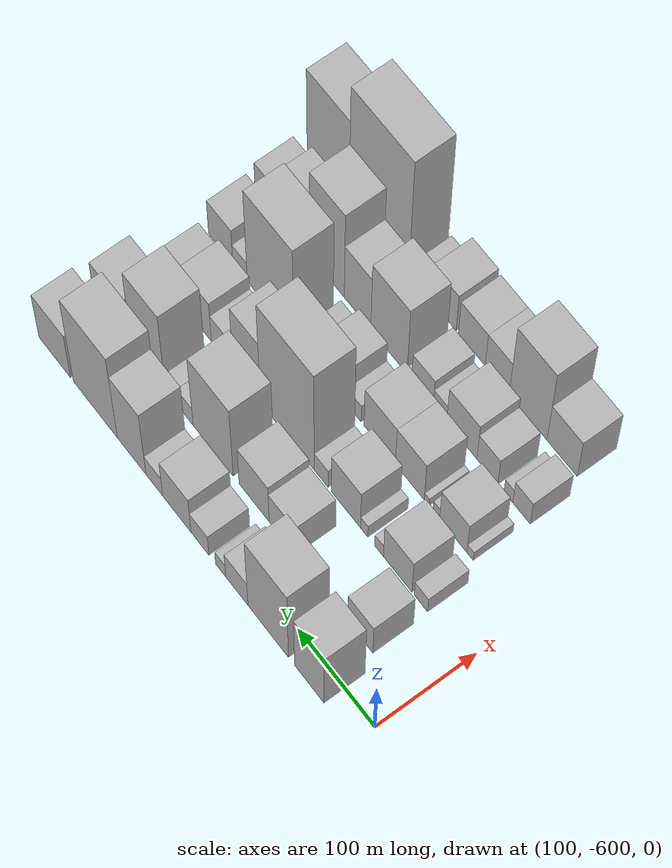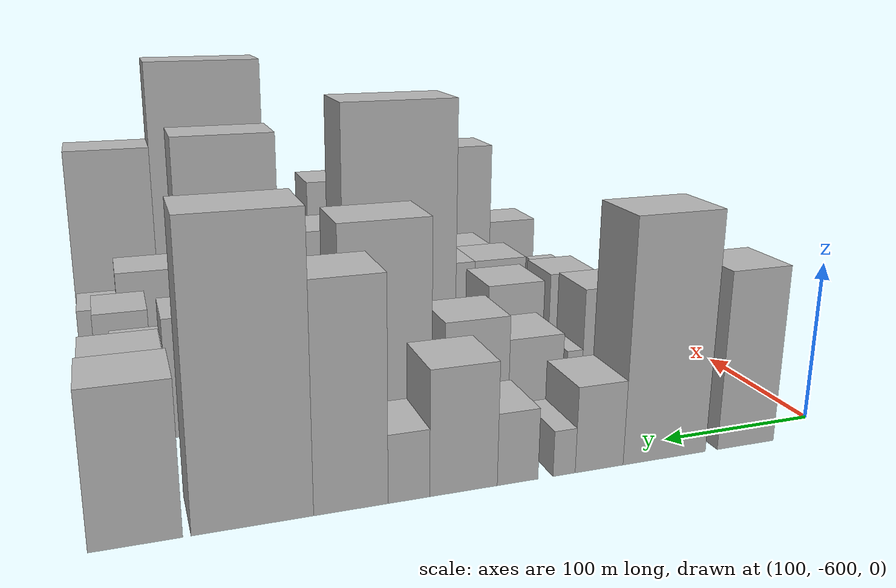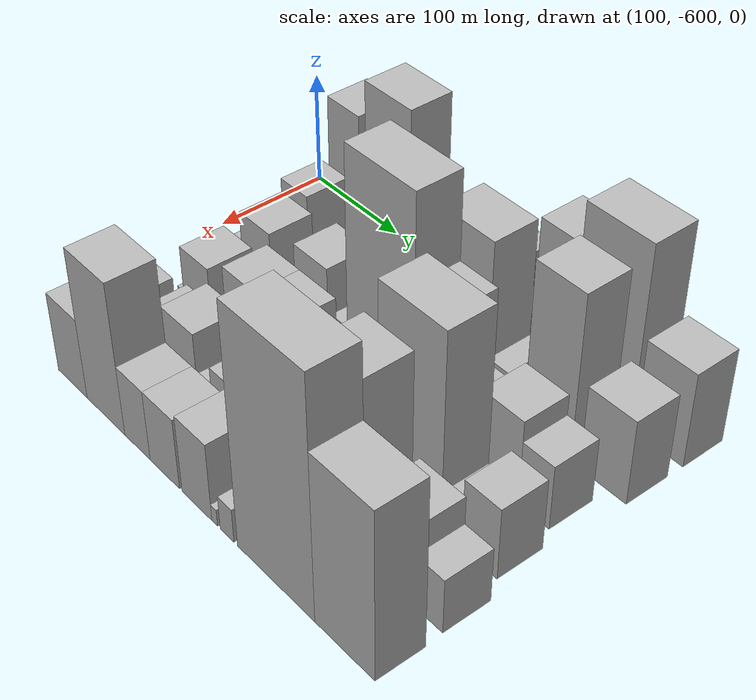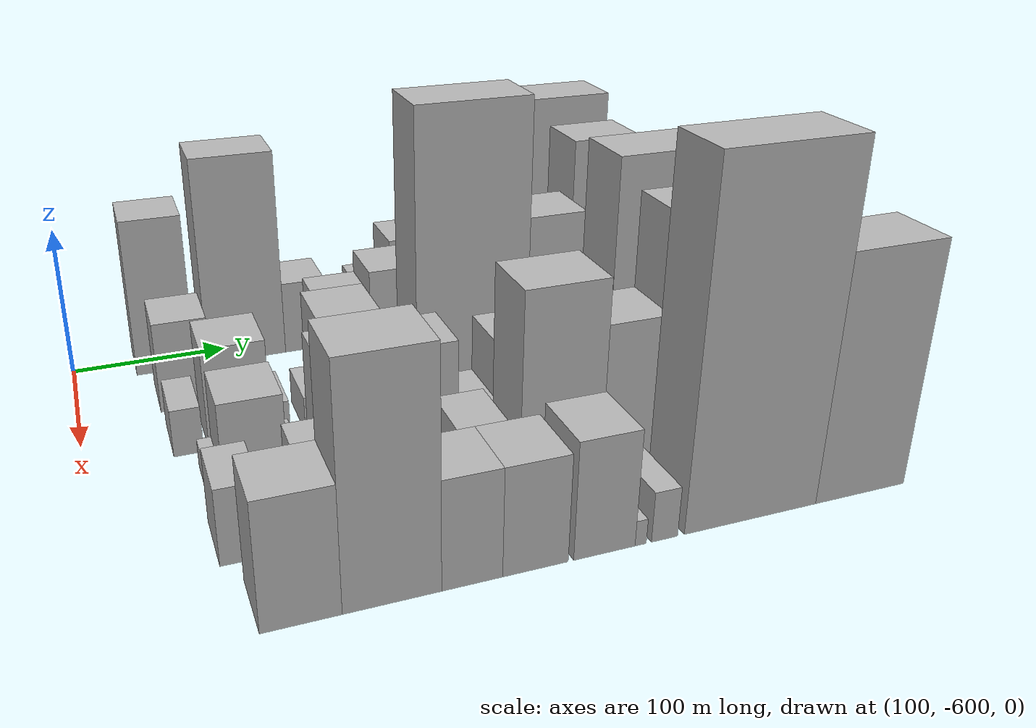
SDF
<sdf version="1.6">
 <world name="default">
  <model name="building_12">
   <static>1</static>
   <pose>100.0000 -541.5066 0 0.000000 0.000000 0.000000</pose>
   <link name="link">
    <pose>0 0 54.00 0 0 0</pose>
    <collision name="collision"><geometry><box><size>40.0000 38.3972 108.0000</size></box></geometry></collision>
    <visual name="visual">
     <cast_shadows>0</cast_shadows>
     <geometry><box><size>40.0000 38.3972 108.0000</size></box></geometry>
     <material>
      <script>
       <uri>model://HANNAS_wall/materials/scripts</uri>
       <uri>model://HANNAS_wall/materials/textures</uri>
       <name>vrc/HANNAS_wall</name>
      </script>
     </material>
    </visual>
   </link>
  </model>
  <model name="building_13">
   <static>1</static>
   <pose>100.0000 -487.5618 0 0.000000 0.000000 0.000000</pose>
   <link name="link">
    <pose>0 0 72.00 0 0 0</pose>
    <collision name="collision"><geometry><box><size>40.0000 53.4926 144.0000</size></box></geometry></collision>
    <visual name="visual">
     <cast_shadows>0</cast_shadows>
     <geometry><box><size>40.0000 53.4926 144.0000</size></box></geometry>
     <material>
      <script>
       <uri>model://HANNAS_wall/materials/scripts</uri>
       <uri>model://HANNAS_wall/materials/textures</uri>
       <name>vrc/HANNAS_wall</name>
      </script>
     </material>
    </visual>
   </link>
  </model>
  <model name="building_14">
   <static>1</static>
   <pose>100.0000 -445.9098 0 0.000000 0.000000 0.000000</pose>
   <link name="link">
    <pose>0 0 25.50 0 0 0</pose>
    <collision name="collision"><geometry><box><size>40.0000 29.8113 51.0000</size></box></geometry></collision>
    <visual name="visual">
     <cast_shadows>0</cast_shadows>
     <geometry><box><size>40.0000 29.8113 51.0000</size></box></geometry>
     <material>
      <script>
       <uri>model://HANNAS_wall/materials/scripts</uri>
       <uri>model://HANNAS_wall/materials/textures</uri>
       <name>vrc/HANNAS_wall</name>
      </script>
     </material>
    </visual>
   </link>
  </model>
  <model name="building_15">
   <static>1</static>
   <pose>100.0000 -424.2704 0 0.000000 0.000000 0.000000</pose>
   <link name="link">
    <pose>0 0 13.50 0 0 0</pose>
    <collision name="collision"><geometry><box><size>40.0000 13.4676 27.0000</size></box></geometry></collision>
    <visual name="visual">
     <cast_shadows>0</cast_shadows>
     <geometry><box><size>40.0000 13.4676 27.0000</size></box></geometry>
     <material>
      <script>
       <uri>model://HANNAS_wall/materials/scripts</uri>
       <uri>model://HANNAS_wall/materials/textures</uri>
       <name>vrc/HANNAS_wall</name>
      </script>
     </material>
    </visual>
   </link>
  </model>
  <model name="building_16">
   <static>1</static>
   <pose>100.0000 -396.5163 0 0.000000 0.000000 0.000000</pose>
   <link name="link">
    <pose>0 0 21.00 0 0 0</pose>
    <collision name="collision"><geometry><box><size>40.0000 24.0407 42.0000</size></box></geometry></collision>
    <visual name="visual">
     <cast_shadows>0</cast_shadows>
     <geometry><box><size>40.0000 24.0407 42.0000</size></box></geometry>
     <material>
      <script>
       <uri>model://HANNAS_wall/materials/scripts</uri>
       <uri>model://HANNAS_wall/materials/textures</uri>
       <name>vrc/HANNAS_wall</name>
      </script>
     </material>
    </visual>
   </link>
  </model>
  <model name="building_17">
   <static>1</static>
   <pose>100.0000 -365.2377 0 0.000000 0.000000 0.000000</pose>
   <link name="link">
    <pose>0 0 36.00 0 0 0</pose>
    <collision name="collision"><geometry><box><size>40.0000 38.5166 72.0000</size></box></geometry></collision>
    <visual name="visual">
     <cast_shadows>0</cast_shadows>
     <geometry><box><size>40.0000 38.5166 72.0000</size></box></geometry>
     <material>
      <script>
       <uri>model://HANNAS_wall/materials/scripts</uri>
       <uri>model://HANNAS_wall/materials/textures</uri>
       <name>vrc/HANNAS_wall</name>
      </script>
     </material>
    </visual>
   </link>
  </model>
  <model name="building_18">
   <static>1</static>
   <pose>100.0000 -334.5423 0 0.000000 0.000000 0.000000</pose>
   <link name="link">
    <pose>0 0 19.50 0 0 0</pose>
    <collision name="collision"><geometry><box><size>40.0000 22.8741 39.0000</size></box></geometry></collision>
    <visual name="visual">
     <cast_shadows>0</cast_shadows>
     <geometry><box><size>40.0000 22.8741 39.0000</size></box></geometry>
     <material>
      <script>
       <uri>model://HANNAS_wall/materials/scripts</uri>
       <uri>model://HANNAS_wall/materials/textures</uri>
       <name>vrc/HANNAS_wall</name>
      </script>
     </material>
    </visual>
   </link>
  </model>
  <model name="building_19">
   <static>1</static>
   <pose>100.0000 -303.3574 0 0.000000 0.000000 0.000000</pose>
   <link name="link">
    <pose>0 0 63.00 0 0 0</pose>
    <collision name="collision"><geometry><box><size>40.0000 39.4959 126.0000</size></box></geometry></collision>
    <visual name="visual">
     <cast_shadows>0</cast_shadows>
     <geometry><box><size>40.0000 39.4959 126.0000</size></box></geometry>
     <material>
      <script>
       <uri>model://HANNAS_wall/materials/scripts</uri>
       <uri>model://HANNAS_wall/materials/textures</uri>
       <name>vrc/HANNAS_wall</name>
      </script>
     </material>
    </visual>
   </link>
  </model>
  <model name="building_20">
   <static>1</static>
   <pose>100.0000 -252.9462 0 0.000000 0.000000 0.000000</pose>
   <link name="link">
    <pose>0 0 81.00 0 0 0</pose>
    <collision name="collision"><geometry><box><size>40.0000 61.3265 162.0000</size></box></geometry></collision>
    <visual name="visual">
     <cast_shadows>0</cast_shadows>
     <geometry><box><size>40.0000 61.3265 162.0000</size></box></geometry>
     <material>
      <script>
       <uri>model://HANNAS_wall/materials/scripts</uri>
       <uri>model://HANNAS_wall/materials/textures</uri>
       <name>vrc/HANNAS_wall</name>
      </script>
     </material>
    </visual>
   </link>
  </model>
  <model name="building_21">
   <static>1</static>
   <pose>100.0000 -196.0026 0 0.000000 0.000000 0.000000</pose>
   <link name="link">
    <pose>0 0 42.00 0 0 0</pose>
    <collision name="collision"><geometry><box><size>40.0000 44.5608 84.0000</size></box></geometry></collision>
    <visual name="visual">
     <cast_shadows>0</cast_shadows>
     <geometry><box><size>40.0000 44.5608 84.0000</size></box></geometry>
     <material>
      <script>
       <uri>model://HANNAS_wall/materials/scripts</uri>
       <uri>model://HANNAS_wall/materials/textures</uri>
       <name>vrc/HANNAS_wall</name>
      </script>
     </material>
    </visual>
   </link>
  </model>
  <model name="building_68">
   <static>1</static>
   <pose>155.0000 -534.6393 0 0.000000 0.000000 0.000000</pose>
   <link name="link">
    <pose>0 0 30.00 0 0 0</pose>
    <collision name="collision"><geometry><box><size>40.0000 32.7534 60.0000</size></box></geometry></collision>
    <visual name="visual">
     <cast_shadows>0</cast_shadows>
     <geometry><box><size>40.0000 32.7534 60.0000</size></box></geometry>
     <material>
      <script>
       <uri>model://HANNAS_wall/materials/scripts</uri>
       <uri>model://HANNAS_wall/materials/textures</uri>
       <name>vrc/HANNAS_wall</name>
      </script>
     </material>
    </visual>
   </link>
  </model>
  <model name="building_69">
   <static>1</static>
   <pose>155.0000 -431.7479 0 0.000000 0.000000 0.000000</pose>
   <link name="link">
    <pose>0 0 30.00 0 0 0</pose>
    <collision name="collision"><geometry><box><size>40.0000 35.0098 60.0000</size></box></geometry></collision>
    <visual name="visual">
     <cast_shadows>0</cast_shadows>
     <geometry><box><size>40.0000 35.0098 60.0000</size></box></geometry>
     <material>
      <script>
       <uri>model://HANNAS_wall/materials/scripts</uri>
       <uri>model://HANNAS_wall/materials/textures</uri>
       <name>vrc/HANNAS_wall</name>
      </script>
     </material>
    </visual>
   </link>
  </model>
  <model name="building_70">
   <static>1</static>
   <pose>155.0000 -394.0732 0 0.000000 0.000000 0.000000</pose>
   <link name="link">
    <pose>0 0 37.50 0 0 0</pose>
    <collision name="collision"><geometry><box><size>40.0000 40.3396 75.0000</size></box></geometry></collision>
    <visual name="visual">
     <cast_shadows>0</cast_shadows>
     <geometry><box><size>40.0000 40.3396 75.0000</size></box></geometry>
     <material>
      <script>
       <uri>model://HANNAS_wall/materials/scripts</uri>
       <uri>model://HANNAS_wall/materials/textures</uri>
       <name>vrc/HANNAS_wall</name>
      </script>
     </material>
    </visual>
   </link>
  </model>
  <model name="building_71">
   <static>1</static>
   <pose>155.0000 -338.6477 0 0.000000 0.000000 0.000000</pose>
   <link name="link">
    <pose>0 0 69.00 0 0 0</pose>
    <collision name="collision"><geometry><box><size>40.0000 54.5115 138.0000</size></box></geometry></collision>
    <visual name="visual">
     <cast_shadows>0</cast_shadows>
     <geometry><box><size>40.0000 54.5115 138.0000</size></box></geometry>
     <material>
      <script>
       <uri>model://HANNAS_wall/materials/scripts</uri>
       <uri>model://HANNAS_wall/materials/textures</uri>
       <name>vrc/HANNAS_wall</name>
      </script>
     </material>
    </visual>
   </link>
  </model>
  <model name="building_72">
   <static>1</static>
   <pose>155.0000 -301.0475 0 0.000000 0.000000 0.000000</pose>
   <link name="link">
    <pose>0 0 18.00 0 0 0</pose>
    <collision name="collision"><geometry><box><size>40.0000 20.6888 36.0000</size></box></geometry></collision>
    <visual name="visual">
     <cast_shadows>0</cast_shadows>
     <geometry><box><size>40.0000 20.6888 36.0000</size></box></geometry>
     <material>
      <script>
       <uri>model://HANNAS_wall/materials/scripts</uri>
       <uri>model://HANNAS_wall/materials/textures</uri>
       <name>vrc/HANNAS_wall</name>
      </script>
     </material>
    </visual>
   </link>
  </model>
  <model name="building_73">
   <static>1</static>
   <pose>155.0000 -281.9020 0 0.000000 0.000000 0.000000</pose>
   <link name="link">
    <pose>0 0 16.50 0 0 0</pose>
    <collision name="collision"><geometry><box><size>40.0000 17.6022 33.0000</size></box></geometry></collision>
    <visual name="visual">
     <cast_shadows>0</cast_shadows>
     <geometry><box><size>40.0000 17.6022 33.0000</size></box></geometry>
     <material>
      <script>
       <uri>model://HANNAS_wall/materials/scripts</uri>
       <uri>model://HANNAS_wall/materials/textures</uri>
       <name>vrc/HANNAS_wall</name>
      </script>
     </material>
    </visual>
   </link>
  </model>
  <model name="building_74">
   <static>1</static>
   <pose>155.0000 -249.7751 0 0.000000 0.000000 0.000000</pose>
   <link name="link">
    <pose>0 0 73.50 0 0 0</pose>
    <collision name="collision"><geometry><box><size>40.0000 46.6516 147.0000</size></box></geometry></collision>
    <visual name="visual">
     <cast_shadows>0</cast_shadows>
     <geometry><box><size>40.0000 46.6516 147.0000</size></box></geometry>
     <material>
      <script>
       <uri>model://HANNAS_wall/materials/scripts</uri>
       <uri>model://HANNAS_wall/materials/textures</uri>
       <name>vrc/HANNAS_wall</name>
      </script>
     </material>
    </visual>
   </link>
  </model>
  <model name="building_75">
   <static>1</static>
   <pose>155.0000 -195.8261 0 0.000000 0.000000 0.000000</pose>
   <link name="link">
    <pose>0 0 37.50 0 0 0</pose>
    <collision name="collision"><geometry><box><size>40.0000 43.2464 75.0000</size></box></geometry></collision>
    <visual name="visual">
     <cast_shadows>0</cast_shadows>
     <geometry><box><size>40.0000 43.2464 75.0000</size></box></geometry>
     <material>
      <script>
       <uri>model://HANNAS_wall/materials/scripts</uri>
       <uri>model://HANNAS_wall/materials/textures</uri>
       <name>vrc/HANNAS_wall</name>
      </script>
     </material>
    </visual>
   </link>
  </model>
  <model name="building_121">
   <static>1</static>
   <pose>210.0000 -541.0070 0 0.000000 0.000000 0.000000</pose>
   <link name="link">
    <pose>0 0 15.00 0 0 0</pose>
    <collision name="collision"><geometry><box><size>40.0000 17.3625 30.0000</size></box></geometry></collision>
    <visual name="visual">
     <cast_shadows>0</cast_shadows>
     <geometry><box><size>40.0000 17.3625 30.0000</size></box></geometry>
     <material>
      <script>
       <uri>model://HANNAS_wall/materials/scripts</uri>
       <uri>model://HANNAS_wall/materials/textures</uri>
       <name>vrc/HANNAS_wall</name>
      </script>
     </material>
    </visual>
   </link>
  </model>
  <model name="building_122">
   <static>1</static>
   <pose>210.0000 -510.7405 0 0.000000 0.000000 0.000000</pose>
   <link name="link">
    <pose>0 0 33.00 0 0 0</pose>
    <collision name="collision"><geometry><box><size>40.0000 37.1705 66.0000</size></box></geometry></collision>
    <visual name="visual">
     <cast_shadows>0</cast_shadows>
     <geometry><box><size>40.0000 37.1705 66.0000</size></box></geometry>
     <material>
      <script>
       <uri>model://HANNAS_wall/materials/scripts</uri>
       <uri>model://HANNAS_wall/materials/textures</uri>
       <name>vrc/HANNAS_wall</name>
      </script>
     </material>
    </visual>
   </link>
  </model>
  <model name="building_123">
   <static>1</static>
   <pose>210.0000 -486.4459 0 0.000000 0.000000 0.000000</pose>
   <link name="link">
    <pose>0 0 12.00 0 0 0</pose>
    <collision name="collision"><geometry><box><size>40.0000 11.4187 24.0000</size></box></geometry></collision>
    <visual name="visual">
     <cast_shadows>0</cast_shadows>
     <geometry><box><size>40.0000 11.4187 24.0000</size></box></geometry>
     <material>
      <script>
       <uri>model://HANNAS_wall/materials/scripts</uri>
       <uri>model://HANNAS_wall/materials/textures</uri>
       <name>vrc/HANNAS_wall</name>
      </script>
     </material>
    </visual>
   </link>
  </model>
  <model name="building_124">
   <static>1</static>
   <pose>210.0000 -466.8483 0 0.000000 0.000000 0.000000</pose>
   <link name="link">
    <pose>0 0 12.00 0 0 0</pose>
    <collision name="collision"><geometry><box><size>40.0000 9.7766 24.0000</size></box></geometry></collision>
    <visual name="visual">
     <cast_shadows>0</cast_shadows>
     <geometry><box><size>40.0000 9.7766 24.0000</size></box></geometry>
     <material>
      <script>
       <uri>model://HANNAS_wall/materials/scripts</uri>
       <uri>model://HANNAS_wall/materials/textures</uri>
       <name>vrc/HANNAS_wall</name>
      </script>
     </material>
    </visual>
   </link>
  </model>
  <model name="building_125">
   <static>1</static>
   <pose>210.0000 -442.5490 0 0.000000 0.000000 0.000000</pose>
   <link name="link">
    <pose>0 0 37.50 0 0 0</pose>
    <collision name="collision"><geometry><box><size>40.0000 38.8220 75.0000</size></box></geometry></collision>
    <visual name="visual">
     <cast_shadows>0</cast_shadows>
     <geometry><box><size>40.0000 38.8220 75.0000</size></box></geometry>
     <material>
      <script>
       <uri>model://HANNAS_wall/materials/scripts</uri>
       <uri>model://HANNAS_wall/materials/textures</uri>
       <name>vrc/HANNAS_wall</name>
      </script>
     </material>
    </visual>
   </link>
  </model>
  <model name="building_126">
   <static>1</static>
   <pose>210.0000 -409.9000 0 0.000000 0.000000 0.000000</pose>
   <link name="link">
    <pose>0 0 18.00 0 0 0</pose>
    <collision name="collision"><geometry><box><size>40.0000 18.4760 36.0000</size></box></geometry></collision>
    <visual name="visual">
     <cast_shadows>0</cast_shadows>
     <geometry><box><size>40.0000 18.4760 36.0000</size></box></geometry>
     <material>
      <script>
       <uri>model://HANNAS_wall/materials/scripts</uri>
       <uri>model://HANNAS_wall/materials/textures</uri>
       <name>vrc/HANNAS_wall</name>
      </script>
     </material>
    </visual>
   </link>
  </model>
  <model name="building_127">
   <static>1</static>
   <pose>210.0000 -364.2557 0 0.000000 0.000000 0.000000</pose>
   <link name="link">
    <pose>0 0 97.50 0 0 0</pose>
    <collision name="collision"><geometry><box><size>40.0000 72.8127 195.0000</size></box></geometry></collision>
    <visual name="visual">
     <cast_shadows>0</cast_shadows>
     <geometry><box><size>40.0000 72.8127 195.0000</size></box></geometry>
     <material>
      <script>
       <uri>model://HANNAS_wall/materials/scripts</uri>
       <uri>model://HANNAS_wall/materials/textures</uri>
       <name>vrc/HANNAS_wall</name>
      </script>
     </material>
    </visual>
   </link>
  </model>
  <model name="building_128">
   <static>1</static>
   <pose>210.0000 -309.1788 0 0.000000 0.000000 0.000000</pose>
   <link name="link">
    <pose>0 0 60.00 0 0 0</pose>
    <collision name="collision"><geometry><box><size>40.0000 37.3410 120.0000</size></box></geometry></collision>
    <visual name="visual">
     <cast_shadows>0</cast_shadows>
     <geometry><box><size>40.0000 37.3410 120.0000</size></box></geometry>
     <material>
      <script>
       <uri>model://HANNAS_wall/materials/scripts</uri>
       <uri>model://HANNAS_wall/materials/textures</uri>
       <name>vrc/HANNAS_wall</name>
      </script>
     </material>
    </visual>
   </link>
  </model>
  <model name="building_129">
   <static>1</static>
   <pose>210.0000 -275.6397 0 0.000000 0.000000 0.000000</pose>
   <link name="link">
    <pose>0 0 25.50 0 0 0</pose>
    <collision name="collision"><geometry><box><size>40.0000 29.7372 51.0000</size></box></geometry></collision>
    <visual name="visual">
     <cast_shadows>0</cast_shadows>
     <geometry><box><size>40.0000 29.7372 51.0000</size></box></geometry>
     <material>
      <script>
       <uri>model://HANNAS_wall/materials/scripts</uri>
       <uri>model://HANNAS_wall/materials/textures</uri>
       <name>vrc/HANNAS_wall</name>
      </script>
     </material>
    </visual>
   </link>
  </model>
  <model name="building_130">
   <static>1</static>
   <pose>210.0000 -240.4350 0 0.000000 0.000000 0.000000</pose>
   <link name="link">
    <pose>0 0 37.50 0 0 0</pose>
    <collision name="collision"><geometry><box><size>40.0000 40.6722 75.0000</size></box></geometry></collision>
    <visual name="visual">
     <cast_shadows>0</cast_shadows>
     <geometry><box><size>40.0000 40.6722 75.0000</size></box></geometry>
     <material>
      <script>
       <uri>model://HANNAS_wall/materials/scripts</uri>
       <uri>model://HANNAS_wall/materials/textures</uri>
       <name>vrc/HANNAS_wall</name>
      </script>
     </material>
    </visual>
   </link>
  </model>
  <model name="building_131">
   <static>1</static>
   <pose>210.0000 -205.4852 0 0.000000 0.000000 0.000000</pose>
   <link name="link">
    <pose>0 0 28.50 0 0 0</pose>
    <collision name="collision"><geometry><box><size>40.0000 29.2274 57.0000</size></box></geometry></collision>
    <visual name="visual">
     <cast_shadows>0</cast_shadows>
     <geometry><box><size>40.0000 29.2274 57.0000</size></box></geometry>
     <material>
      <script>
       <uri>model://HANNAS_wall/materials/scripts</uri>
       <uri>model://HANNAS_wall/materials/textures</uri>
       <name>vrc/HANNAS_wall</name>
      </script>
     </material>
    </visual>
   </link>
  </model>
  <model name="building_170">
   <static>1</static>
   <pose>265.0000 -533.1861 0 0.000000 0.000000 0.000000</pose>
   <link name="link">
    <pose>0 0 9.00 0 0 0</pose>
    <collision name="collision"><geometry><box><size>40.0000 8.1483 18.0000</size></box></geometry></collision>
    <visual name="visual">
     <cast_shadows>0</cast_shadows>
     <geometry><box><size>40.0000 8.1483 18.0000</size></box></geometry>
     <material>
      <script>
       <uri>model://HANNAS_wall/materials/scripts</uri>
       <uri>model://HANNAS_wall/materials/textures</uri>
       <name>vrc/HANNAS_wall</name>
      </script>
     </material>
    </visual>
   </link>
  </model>
  <model name="building_171">
   <static>1</static>
   <pose>265.0000 -511.3131 0 0.000000 0.000000 0.000000</pose>
   <link name="link">
    <pose>0 0 30.00 0 0 0</pose>
    <collision name="collision"><geometry><box><size>40.0000 35.5978 60.0000</size></box></geometry></collision>
    <visual name="visual">
     <cast_shadows>0</cast_shadows>
     <geometry><box><size>40.0000 35.5978 60.0000</size></box></geometry>
     <material>
      <script>
       <uri>model://HANNAS_wall/materials/scripts</uri>
       <uri>model://HANNAS_wall/materials/textures</uri>
       <name>vrc/HANNAS_wall</name>
      </script>
     </material>
    </visual>
   </link>
  </model>
  <model name="building_172">
   <static>1</static>
   <pose>265.0000 -489.1477 0 0.000000 0.000000 0.000000</pose>
   <link name="link">
    <pose>0 0 10.50 0 0 0</pose>
    <collision name="collision"><geometry><box><size>40.0000 8.7330 21.0000</size></box></geometry></collision>
    <visual name="visual">
     <cast_shadows>0</cast_shadows>
     <geometry><box><size>40.0000 8.7330 21.0000</size></box></geometry>
     <material>
      <script>
       <uri>model://HANNAS_wall/materials/scripts</uri>
       <uri>model://HANNAS_wall/materials/textures</uri>
       <name>vrc/HANNAS_wall</name>
      </script>
     </material>
    </visual>
   </link>
  </model>
  <model name="building_173">
   <static>1</static>
   <pose>265.0000 -476.6167 0 0.000000 0.000000 0.000000</pose>
   <link name="link">
    <pose>0 0 7.50 0 0 0</pose>
    <collision name="collision"><geometry><box><size>40.0000 6.3291 15.0000</size></box></geometry></collision>
    <visual name="visual">
     <cast_shadows>0</cast_shadows>
     <geometry><box><size>40.0000 6.3291 15.0000</size></box></geometry>
     <material>
      <script>
       <uri>model://HANNAS_wall/materials/scripts</uri>
       <uri>model://HANNAS_wall/materials/textures</uri>
       <name>vrc/HANNAS_wall</name>
      </script>
     </material>
    </visual>
   </link>
  </model>
  <model name="building_174">
   <static>1</static>
   <pose>265.0000 -454.4321 0 0.000000 0.000000 0.000000</pose>
   <link name="link">
    <pose>0 0 37.50 0 0 0</pose>
    <collision name="collision"><geometry><box><size>40.0000 38.0401 75.0000</size></box></geometry></collision>
    <visual name="visual">
     <cast_shadows>0</cast_shadows>
     <geometry><box><size>40.0000 38.0401 75.0000</size></box></geometry>
     <material>
      <script>
       <uri>model://HANNAS_wall/materials/scripts</uri>
       <uri>model://HANNAS_wall/materials/textures</uri>
       <name>vrc/HANNAS_wall</name>
      </script>
     </material>
    </visual>
   </link>
  </model>
  <model name="building_175">
   <static>1</static>
   <pose>265.0000 -414.5895 0 0.000000 0.000000 0.000000</pose>
   <link name="link">
    <pose>0 0 37.50 0 0 0</pose>
    <collision name="collision"><geometry><box><size>40.0000 41.6450 75.0000</size></box></geometry></collision>
    <visual name="visual">
     <cast_shadows>0</cast_shadows>
     <geometry><box><size>40.0000 41.6450 75.0000</size></box></geometry>
     <material>
      <script>
       <uri>model://HANNAS_wall/materials/scripts</uri>
       <uri>model://HANNAS_wall/materials/textures</uri>
       <name>vrc/HANNAS_wall</name>
      </script>
     </material>
    </visual>
   </link>
  </model>
  <model name="building_176">
   <static>1</static>
   <pose>265.0000 -380.1897 0 0.000000 0.000000 0.000000</pose>
   <link name="link">
    <pose>0 0 16.50 0 0 0</pose>
    <collision name="collision"><geometry><box><size>40.0000 19.1547 33.0000</size></box></geometry></collision>
    <visual name="visual">
     <cast_shadows>0</cast_shadows>
     <geometry><box><size>40.0000 19.1547 33.0000</size></box></geometry>
     <material>
      <script>
       <uri>model://HANNAS_wall/materials/scripts</uri>
       <uri>model://HANNAS_wall/materials/textures</uri>
       <name>vrc/HANNAS_wall</name>
      </script>
     </material>
    </visual>
   </link>
  </model>
  <model name="building_177">
   <static>1</static>
   <pose>265.0000 -352.0793 0 0.000000 0.000000 0.000000</pose>
   <link name="link">
    <pose>0 0 34.50 0 0 0</pose>
    <collision name="collision"><geometry><box><size>40.0000 37.0661 69.0000</size></box></geometry></collision>
    <visual name="visual">
     <cast_shadows>0</cast_shadows>
     <geometry><box><size>40.0000 37.0661 69.0000</size></box></geometry>
     <material>
      <script>
       <uri>model://HANNAS_wall/materials/scripts</uri>
       <uri>model://HANNAS_wall/materials/textures</uri>
       <name>vrc/HANNAS_wall</name>
      </script>
     </material>
    </visual>
   </link>
  </model>
  <model name="building_178">
   <static>1</static>
   <pose>265.0000 -321.4880 0 0.000000 0.000000 0.000000</pose>
   <link name="link">
    <pose>0 0 21.00 0 0 0</pose>
    <collision name="collision"><geometry><box><size>40.0000 24.1164 42.0000</size></box></geometry></collision>
    <visual name="visual">
     <cast_shadows>0</cast_shadows>
     <geometry><box><size>40.0000 24.1164 42.0000</size></box></geometry>
     <material>
      <script>
       <uri>model://HANNAS_wall/materials/scripts</uri>
       <uri>model://HANNAS_wall/materials/textures</uri>
       <name>vrc/HANNAS_wall</name>
      </script>
     </material>
    </visual>
   </link>
  </model>
  <model name="building_179">
   <static>1</static>
   <pose>265.0000 -267.2676 0 0.000000 0.000000 0.000000</pose>
   <link name="link">
    <pose>0 0 85.50 0 0 0</pose>
    <collision name="collision"><geometry><box><size>40.0000 64.3246 171.0000</size></box></geometry></collision>
    <visual name="visual">
     <cast_shadows>0</cast_shadows>
     <geometry><box><size>40.0000 64.3246 171.0000</size></box></geometry>
     <material>
      <script>
       <uri>model://HANNAS_wall/materials/scripts</uri>
       <uri>model://HANNAS_wall/materials/textures</uri>
       <name>vrc/HANNAS_wall</name>
      </script>
     </material>
    </visual>
   </link>
  </model>
  <model name="building_180">
   <static>1</static>
   <pose>265.0000 -225.0497 0 0.000000 0.000000 0.000000</pose>
   <link name="link">
    <pose>0 0 18.00 0 0 0</pose>
    <collision name="collision"><geometry><box><size>40.0000 20.1111 36.0000</size></box></geometry></collision>
    <visual name="visual">
     <cast_shadows>0</cast_shadows>
     <geometry><box><size>40.0000 20.1111 36.0000</size></box></geometry>
     <material>
      <script>
       <uri>model://HANNAS_wall/materials/scripts</uri>
       <uri>model://HANNAS_wall/materials/textures</uri>
       <name>vrc/HANNAS_wall</name>
      </script>
     </material>
    </visual>
   </link>
  </model>
  <model name="building_181">
   <static>1</static>
   <pose>265.0000 -198.1786 0 0.000000 0.000000 0.000000</pose>
   <link name="link">
    <pose>0 0 31.50 0 0 0</pose>
    <collision name="collision"><geometry><box><size>40.0000 33.6311 63.0000</size></box></geometry></collision>
    <visual name="visual">
     <cast_shadows>0</cast_shadows>
     <geometry><box><size>40.0000 33.6311 63.0000</size></box></geometry>
     <material>
      <script>
       <uri>model://HANNAS_wall/materials/scripts</uri>
       <uri>model://HANNAS_wall/materials/textures</uri>
       <name>vrc/HANNAS_wall</name>
      </script>
     </material>
    </visual>
   </link>
  </model>
  <model name="building_224">
   <static>1</static>
   <pose>320.0000 -528.9480 0 0.000000 0.000000 0.000000</pose>
   <link name="link">
    <pose>0 0 22.50 0 0 0</pose>
    <collision name="collision"><geometry><box><size>40.0000 22.6205 45.0000</size></box></geometry></collision>
    <visual name="visual">
     <cast_shadows>0</cast_shadows>
     <geometry><box><size>40.0000 22.6205 45.0000</size></box></geometry>
     <material>
      <script>
       <uri>model://HANNAS_wall/materials/scripts</uri>
       <uri>model://HANNAS_wall/materials/textures</uri>
       <name>vrc/HANNAS_wall</name>
      </script>
     </material>
    </visual>
   </link>
  </model>
  <model name="building_225">
   <static>1</static>
   <pose>320.0000 -511.9083 0 0.000000 0.000000 0.000000</pose>
   <link name="link">
    <pose>0 0 13.50 0 0 0</pose>
    <collision name="collision"><geometry><box><size>40.0000 11.4589 27.0000</size></box></geometry></collision>
    <visual name="visual">
     <cast_shadows>0</cast_shadows>
     <geometry><box><size>40.0000 11.4589 27.0000</size></box></geometry>
     <material>
      <script>
       <uri>model://HANNAS_wall/materials/scripts</uri>
       <uri>model://HANNAS_wall/materials/textures</uri>
       <name>vrc/HANNAS_wall</name>
      </script>
     </material>
    </visual>
   </link>
  </model>
  <model name="building_226">
   <static>1</static>
   <pose>320.0000 -484.5464 0 0.000000 0.000000 0.000000</pose>
   <link name="link">
    <pose>0 0 25.50 0 0 0</pose>
    <collision name="collision"><geometry><box><size>40.0000 27.2648 51.0000</size></box></geometry></collision>
    <visual name="visual">
     <cast_shadows>0</cast_shadows>
     <geometry><box><size>40.0000 27.2648 51.0000</size></box></geometry>
     <material>
      <script>
       <uri>model://HANNAS_wall/materials/scripts</uri>
       <uri>model://HANNAS_wall/materials/textures</uri>
       <name>vrc/HANNAS_wall</name>
      </script>
     </material>
    </visual>
   </link>
  </model>
  <model name="building_227">
   <static>1</static>
   <pose>320.0000 -451.1117 0 0.000000 0.000000 0.000000</pose>
   <link name="link">
    <pose>0 0 34.50 0 0 0</pose>
    <collision name="collision"><geometry><box><size>40.0000 39.6047 69.0000</size></box></geometry></collision>
    <visual name="visual">
     <cast_shadows>0</cast_shadows>
     <geometry><box><size>40.0000 39.6047 69.0000</size></box></geometry>
     <material>
      <script>
       <uri>model://HANNAS_wall/materials/scripts</uri>
       <uri>model://HANNAS_wall/materials/textures</uri>
       <name>vrc/HANNAS_wall</name>
      </script>
     </material>
    </visual>
   </link>
  </model>
  <model name="building_228">
   <static>1</static>
   <pose>320.0000 -422.4615 0 0.000000 0.000000 0.000000</pose>
   <link name="link">
    <pose>0 0 16.50 0 0 0</pose>
    <collision name="collision"><geometry><box><size>40.0000 17.6956 33.0000</size></box></geometry></collision>
    <visual name="visual">
     <cast_shadows>0</cast_shadows>
     <geometry><box><size>40.0000 17.6956 33.0000</size></box></geometry>
     <material>
      <script>
       <uri>model://HANNAS_wall/materials/scripts</uri>
       <uri>model://HANNAS_wall/materials/textures</uri>
       <name>vrc/HANNAS_wall</name>
      </script>
     </material>
    </visual>
   </link>
  </model>
  <model name="building_229">
   <static>1</static>
   <pose>320.0000 -399.2899 0 0.000000 0.000000 0.000000</pose>
   <link name="link">
    <pose>0 0 25.50 0 0 0</pose>
    <collision name="collision"><geometry><box><size>40.0000 28.6476 51.0000</size></box></geometry></collision>
    <visual name="visual">
     <cast_shadows>0</cast_shadows>
     <geometry><box><size>40.0000 28.6476 51.0000</size></box></geometry>
     <material>
      <script>
       <uri>model://HANNAS_wall/materials/scripts</uri>
       <uri>model://HANNAS_wall/materials/textures</uri>
       <name>vrc/HANNAS_wall</name>
      </script>
     </material>
    </visual>
   </link>
  </model>
  <model name="building_230">
   <static>1</static>
   <pose>320.0000 -381.9164 0 0.000000 0.000000 0.000000</pose>
   <link name="link">
    <pose>0 0 7.50 0 0 0</pose>
    <collision name="collision"><geometry><box><size>40.0000 6.0994 15.0000</size></box></geometry></collision>
    <visual name="visual">
     <cast_shadows>0</cast_shadows>
     <geometry><box><size>40.0000 6.0994 15.0000</size></box></geometry>
     <material>
      <script>
       <uri>model://HANNAS_wall/materials/scripts</uri>
       <uri>model://HANNAS_wall/materials/textures</uri>
       <name>vrc/HANNAS_wall</name>
      </script>
     </material>
    </visual>
   </link>
  </model>
  <model name="building_231">
   <static>1</static>
   <pose>320.0000 -354.4395 0 0.000000 0.000000 0.000000</pose>
   <link name="link">
    <pose>0 0 63.00 0 0 0</pose>
    <collision name="collision"><geometry><box><size>40.0000 48.8543 126.0000</size></box></geometry></collision>
    <visual name="visual">
     <cast_shadows>0</cast_shadows>
     <geometry><box><size>40.0000 48.8543 126.0000</size></box></geometry>
     <material>
      <script>
       <uri>model://HANNAS_wall/materials/scripts</uri>
       <uri>model://HANNAS_wall/materials/textures</uri>
       <name>vrc/HANNAS_wall</name>
      </script>
     </material>
    </visual>
   </link>
  </model>
  <model name="building_232">
   <static>1</static>
   <pose>320.0000 -312.1276 0 0.000000 0.000000 0.000000</pose>
   <link name="link">
    <pose>0 0 49.50 0 0 0</pose>
    <collision name="collision"><geometry><box><size>40.0000 35.7696 99.0000</size></box></geometry></collision>
    <visual name="visual">
     <cast_shadows>0</cast_shadows>
     <geometry><box><size>40.0000 35.7696 99.0000</size></box></geometry>
     <material>
      <script>
       <uri>model://HANNAS_wall/materials/scripts</uri>
       <uri>model://HANNAS_wall/materials/textures</uri>
       <name>vrc/HANNAS_wall</name>
      </script>
     </material>
    </visual>
   </link>
  </model>
  <model name="building_233">
   <static>1</static>
   <pose>320.0000 -270.7575 0 0.000000 0.000000 0.000000</pose>
   <link name="link">
    <pose>0 0 78.00 0 0 0</pose>
    <collision name="collision"><geometry><box><size>40.0000 46.9706 156.0000</size></box></geometry></collision>
    <visual name="visual">
     <cast_shadows>0</cast_shadows>
     <geometry><box><size>40.0000 46.9706 156.0000</size></box></geometry>
     <material>
      <script>
       <uri>model://HANNAS_wall/materials/scripts</uri>
       <uri>model://HANNAS_wall/materials/textures</uri>
       <name>vrc/HANNAS_wall</name>
      </script>
     </material>
    </visual>
   </link>
  </model>
  <model name="building_234">
   <static>1</static>
   <pose>320.0000 -218.8150 0 0.000000 0.000000 0.000000</pose>
   <link name="link">
    <pose>0 0 36.00 0 0 0</pose>
    <collision name="collision"><geometry><box><size>40.0000 42.9144 72.0000</size></box></geometry></collision>
    <visual name="visual">
     <cast_shadows>0</cast_shadows>
     <geometry><box><size>40.0000 42.9144 72.0000</size></box></geometry>
     <material>
      <script>
       <uri>model://HANNAS_wall/materials/scripts</uri>
       <uri>model://HANNAS_wall/materials/textures</uri>
       <name>vrc/HANNAS_wall</name>
      </script>
     </material>
    </visual>
   </link>
  </model>
  <model name="building_235">
   <static>1</static>
   <pose>320.0000 -184.1367 0 0.000000 0.000000 0.000000</pose>
   <link name="link">
    <pose>0 0 24.00 0 0 0</pose>
    <collision name="collision"><geometry><box><size>40.0000 26.4421 48.0000</size></box></geometry></collision>
    <visual name="visual">
     <cast_shadows>0</cast_shadows>
     <geometry><box><size>40.0000 26.4421 48.0000</size></box></geometry>
     <material>
      <script>
       <uri>model://HANNAS_wall/materials/scripts</uri>
       <uri>model://HANNAS_wall/materials/textures</uri>
       <name>vrc/HANNAS_wall</name>
      </script>
     </material>
    </visual>
   </link>
  </model>
  <model name="building_275">
   <static>1</static>
   <pose>375.0000 -511.3612 0 0.000000 0.000000 0.000000</pose>
   <link name="link">
    <pose>0 0 36.00 0 0 0</pose>
    <collision name="collision"><geometry><box><size>40.0000 39.0198 72.0000</size></box></geometry></collision>
    <visual name="visual">
     <cast_shadows>0</cast_shadows>
     <geometry><box><size>40.0000 39.0198 72.0000</size></box></geometry>
     <material>
      <script>
       <uri>model://HANNAS_wall/materials/scripts</uri>
       <uri>model://HANNAS_wall/materials/textures</uri>
       <name>vrc/HANNAS_wall</name>
      </script>
     </material>
    </visual>
   </link>
  </model>
  <model name="building_276">
   <static>1</static>
   <pose>375.0000 -467.2006 0 0.000000 0.000000 0.000000</pose>
   <link name="link">
    <pose>0 0 67.50 0 0 0</pose>
    <collision name="collision"><geometry><box><size>40.0000 49.3014 135.0000</size></box></geometry></collision>
    <visual name="visual">
     <cast_shadows>0</cast_shadows>
     <geometry><box><size>40.0000 49.3014 135.0000</size></box></geometry>
     <material>
      <script>
       <uri>model://HANNAS_wall/materials/scripts</uri>
       <uri>model://HANNAS_wall/materials/textures</uri>
       <name>vrc/HANNAS_wall</name>
      </script>
     </material>
    </visual>
   </link>
  </model>
  <model name="building_277">
   <static>1</static>
   <pose>375.0000 -426.7101 0 0.000000 0.000000 0.000000</pose>
   <link name="link">
    <pose>0 0 31.50 0 0 0</pose>
    <collision name="collision"><geometry><box><size>40.0000 31.6795 63.0000</size></box></geometry></collision>
    <visual name="visual">
     <cast_shadows>0</cast_shadows>
     <geometry><box><size>40.0000 31.6795 63.0000</size></box></geometry>
     <material>
      <script>
       <uri>model://HANNAS_wall/materials/scripts</uri>
       <uri>model://HANNAS_wall/materials/textures</uri>
       <name>vrc/HANNAS_wall</name>
      </script>
     </material>
    </visual>
   </link>
  </model>
  <model name="building_278">
   <static>1</static>
   <pose>375.0000 -393.1632 0 0.000000 0.000000 0.000000</pose>
   <link name="link">
    <pose>0 0 31.50 0 0 0</pose>
    <collision name="collision"><geometry><box><size>40.0000 35.4144 63.0000</size></box></geometry></collision>
    <visual name="visual">
     <cast_shadows>0</cast_shadows>
     <geometry><box><size>40.0000 35.4144 63.0000</size></box></geometry>
     <material>
      <script>
       <uri>model://HANNAS_wall/materials/scripts</uri>
       <uri>model://HANNAS_wall/materials/textures</uri>
       <name>vrc/HANNAS_wall</name>
      </script>
     </material>
    </visual>
   </link>
  </model>
  <model name="building_279">
   <static>1</static>
   <pose>375.0000 -355.1590 0 0.000000 0.000000 0.000000</pose>
   <link name="link">
    <pose>0 0 34.50 0 0 0</pose>
    <collision name="collision"><geometry><box><size>40.0000 34.5940 69.0000</size></box></geometry></collision>
    <visual name="visual">
     <cast_shadows>0</cast_shadows>
     <geometry><box><size>40.0000 34.5940 69.0000</size></box></geometry>
     <material>
      <script>
       <uri>model://HANNAS_wall/materials/scripts</uri>
       <uri>model://HANNAS_wall/materials/textures</uri>
       <name>vrc/HANNAS_wall</name>
      </script>
     </material>
    </visual>
   </link>
  </model>
  <model name="building_280">
   <static>1</static>
   <pose>375.0000 -334.6251 0 0.000000 0.000000 0.000000</pose>
   <link name="link">
    <pose>0 0 7.50 0 0 0</pose>
    <collision name="collision"><geometry><box><size>40.0000 6.4739 15.0000</size></box></geometry></collision>
    <visual name="visual">
     <cast_shadows>0</cast_shadows>
     <geometry><box><size>40.0000 6.4739 15.0000</size></box></geometry>
     <material>
      <script>
       <uri>model://HANNAS_wall/materials/scripts</uri>
       <uri>model://HANNAS_wall/materials/textures</uri>
       <name>vrc/HANNAS_wall</name>
      </script>
     </material>
    </visual>
   </link>
  </model>
  <model name="building_281">
   <static>1</static>
   <pose>375.0000 -320.7502 0 0.000000 0.000000 0.000000</pose>
   <link name="link">
    <pose>0 0 15.00 0 0 0</pose>
    <collision name="collision"><geometry><box><size>40.0000 15.2759 30.0000</size></box></geometry></collision>
    <visual name="visual">
     <cast_shadows>0</cast_shadows>
     <geometry><box><size>40.0000 15.2759 30.0000</size></box></geometry>
     <material>
      <script>
       <uri>model://HANNAS_wall/materials/scripts</uri>
       <uri>model://HANNAS_wall/materials/textures</uri>
       <name>vrc/HANNAS_wall</name>
      </script>
     </material>
    </visual>
   </link>
  </model>
  <model name="building_282">
   <static>1</static>
   <pose>375.0000 -268.4843 0 0.000000 0.000000 0.000000</pose>
   <link name="link">
    <pose>0 0 103.50 0 0 0</pose>
    <collision name="collision"><geometry><box><size>40.0000 81.2559 207.0000</size></box></geometry></collision>
    <visual name="visual">
     <cast_shadows>0</cast_shadows>
     <geometry><box><size>40.0000 81.2559 207.0000</size></box></geometry>
     <material>
      <script>
       <uri>model://HANNAS_wall/materials/scripts</uri>
       <uri>model://HANNAS_wall/materials/textures</uri>
       <name>vrc/HANNAS_wall</name>
      </script>
     </material>
    </visual>
   </link>
  </model>
  <model name="building_283">
   <static>1</static>
   <pose>375.0000 -198.6790 0 0.000000 0.000000 0.000000</pose>
   <link name="link">
    <pose>0 0 73.50 0 0 0</pose>
    <collision name="collision"><geometry><box><size>40.0000 58.3546 147.0000</size></box></geometry></collision>
    <visual name="visual">
     <cast_shadows>0</cast_shadows>
     <geometry><box><size>40.0000 58.3546 147.0000</size></box></geometry>
     <material>
      <script>
       <uri>model://HANNAS_wall/materials/scripts</uri>
       <uri>model://HANNAS_wall/materials/textures</uri>
       <name>vrc/HANNAS_wall</name>
      </script>
     </material>
    </visual>
   </link>
  </model>
 </world>
</sdf>
